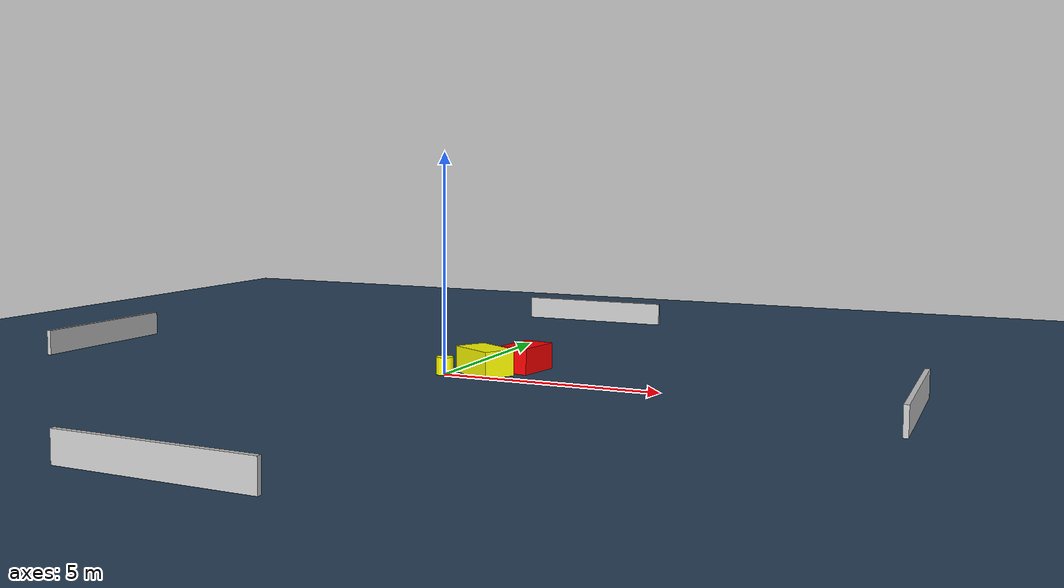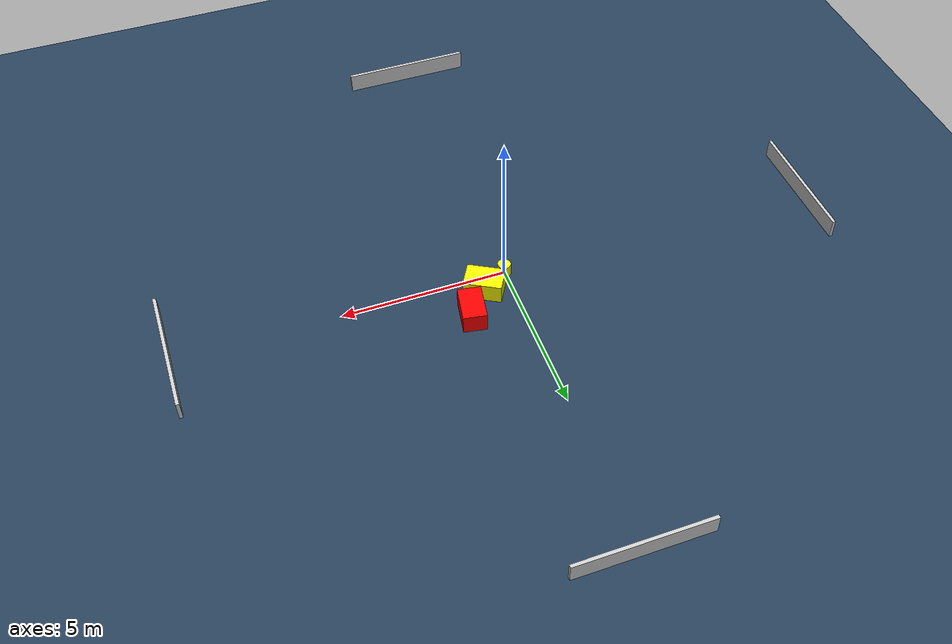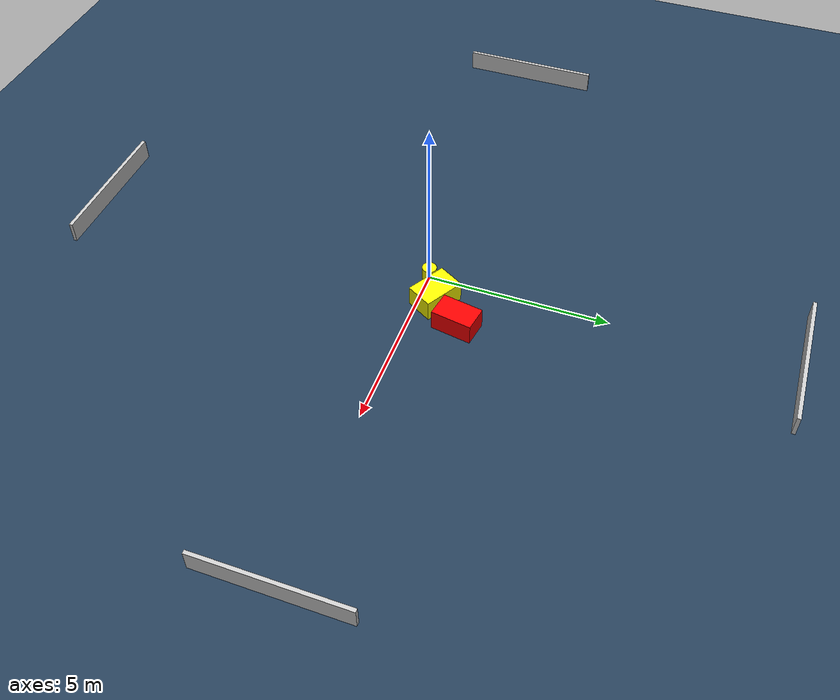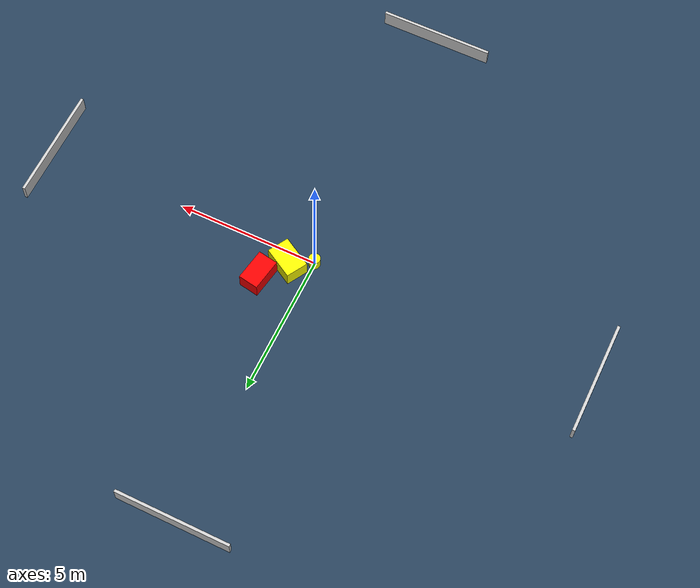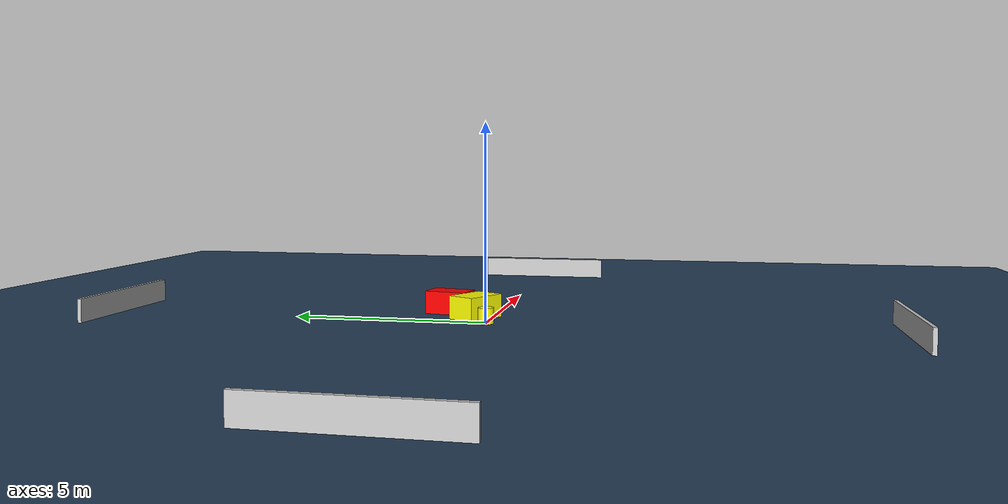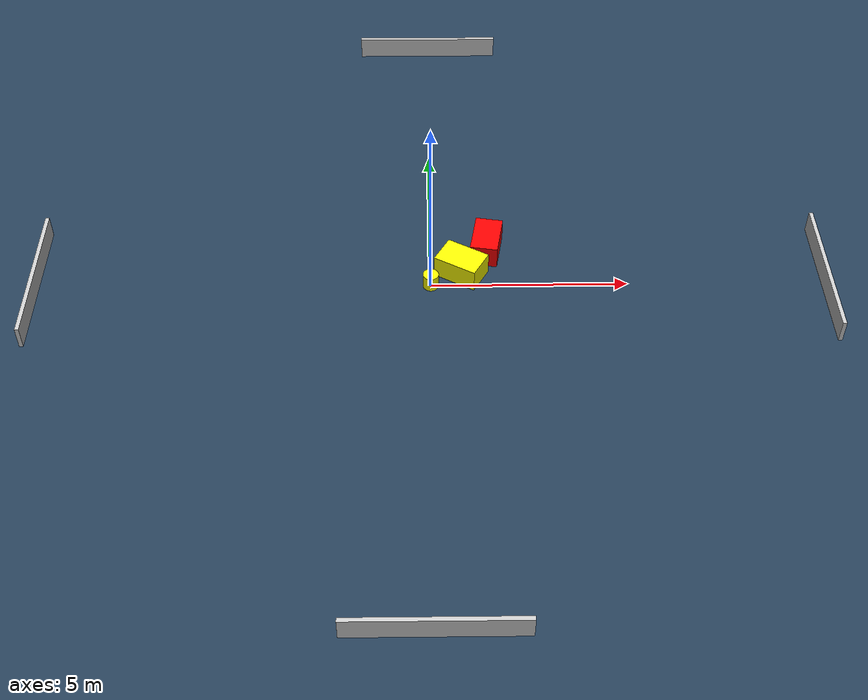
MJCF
<?xml version="1.0" ?>
<mujoco model="generated_environment">
  <option timestep="0.01" integrator="RK4" cone="elliptic"/>
  <default>
    <geom density="1"/>
  </default>
  <asset>
    <texture builtin="gradient" height="3072" name="skybox" rgb1="0.3 0.5 0.7" rgb2="0 0 0" type="skybox" width="512"/>
    <texture builtin="checker" height="300" name="groundplane" rgb1="0.2 0.3 0.4" rgb2="0.1 0.2 0.3" type="2d" width="300"/>
    <material name="groundplane" reflectance="0.2" texrepeat="5 5" texture="groundplane"/>
  </asset>
  <worldbody>
    <light dir="0 0 -1" directional="true" pos="0 0 1.5"/>
    <geom condim="3" friction="0.5 0.005 0.001" material="groundplane" name="floor" pos="0 0 0" size="0 0 0.05" type="plane"/>
    <body name="walls">
      <geom name="wall_1" condim="4" pos="-10.0 0.0 0.3" rgba="0.800000011920929 0.800000011920929 0.800000011920929 1.0" size="0.05 2.0 0.3" type="box"/>
      <geom name="wall_2" condim="4" pos="10.0 0.0 0.3" rgba="0.800000011920929 0.800000011920929 0.800000011920929 1.0" size="0.05 2.0 0.3" type="box"/>
      <geom name="wall_3" condim="4" pos="0.0 -10.0 0.3" rgba="0.800000011920929 0.800000011920929 0.800000011920929 1.0" size="2.0 0.05 0.3" type="box"/>
      <geom name="wall_4" condim="4" pos="0.0 10.0 0.3" rgba="0.800000011920929 0.800000011920929 0.800000011920929 1.0" size="2.0 0.05 0.3" type="box"/>
    </body>
    <body name="robot">
      <joint name="joint_x" type="slide" pos="0 0 0" axis="1 0 0"/>
      <joint name="joint_y" type="slide" pos="0 0 0" axis="0 1 0"/>
      <geom name="robot" type="cylinder" pos="0.0 0.0 0.2" size="0.2 0.2 0.0" mass="5.0" friction="1.0 0.005 0.0001" condim="4" rgba="1.0 1.0 0.0 1.0"/>
    </body>
    <body name="obstacle_1_movable">
      <geom name="obstacle_1_movable" condim="4" pos="0.7853898852910859 0.4429932594649584 0.3" euler="0 0 150.12525892457322" friction="0.0 0.005 0.001" rgba="1.0 1.0 0.0 1.0" size="0.5753822955158742 0.38903038309164284 0.3" type="box" mass="0.1"/>
      <joint type="free"/>
    </body>
    <body name="obstacle_2_static">
      <geom name="obstacle_2_static" condim="4" pos="1.4536376003539389 1.2779655589872936 0.3" euler="0 0 350.33470932927236" friction="0.0 0.005 0.001" rgba="1.0 0.0 0.0 1.0" size="0.35189279026025544 0.5638362066018193 0.3" type="box"/>
    </body>
  </worldbody>
  <actuator>
    <motor name="actuator_x" joint="joint_x" gear="1" ctrlrange="-1 1"/>
    <motor name="actuator_y" joint="joint_y" gear="1" ctrlrange="-1 1"/>
  </actuator>
</mujoco>
